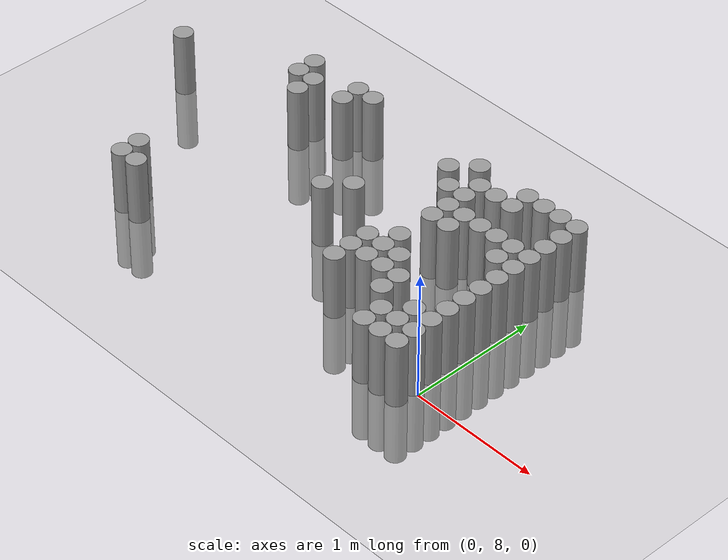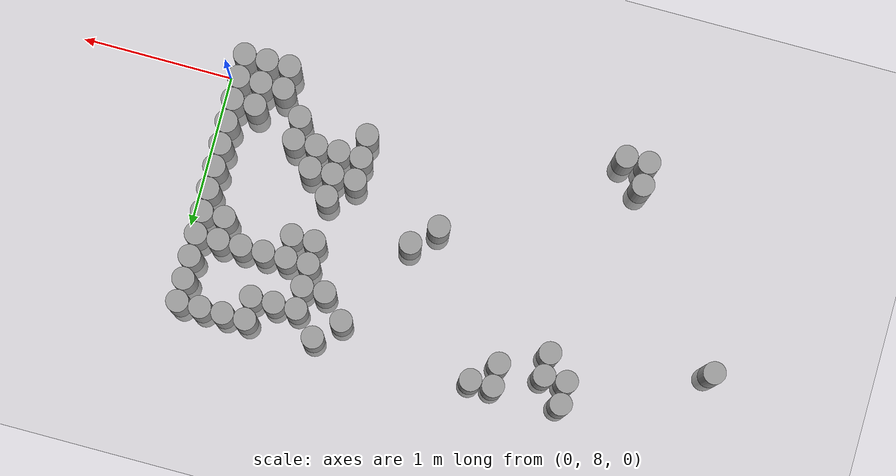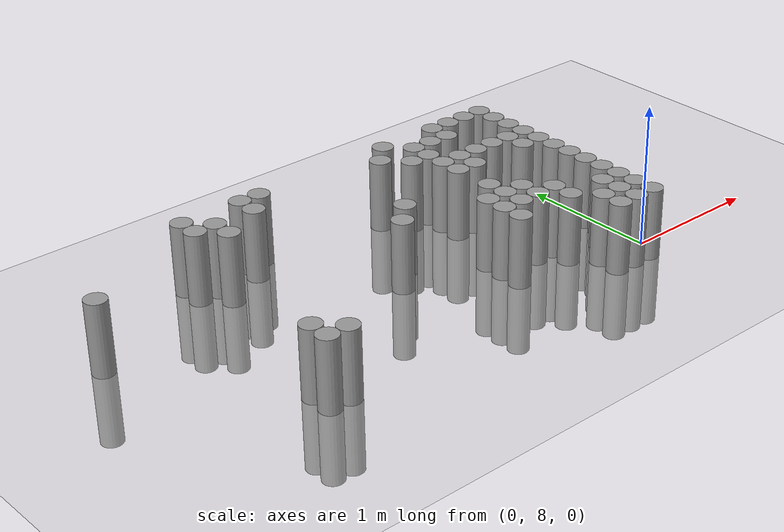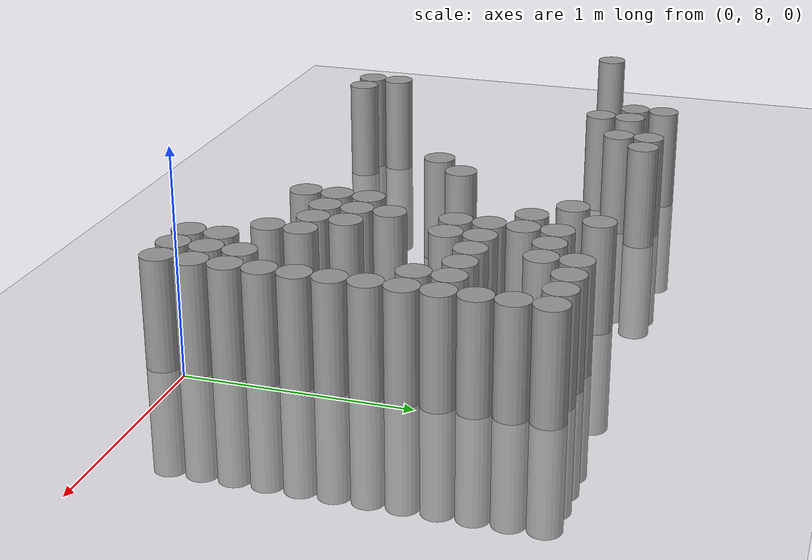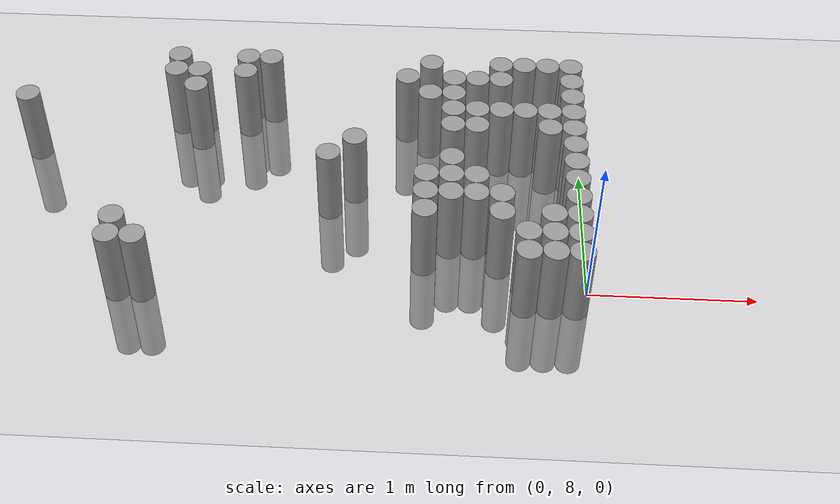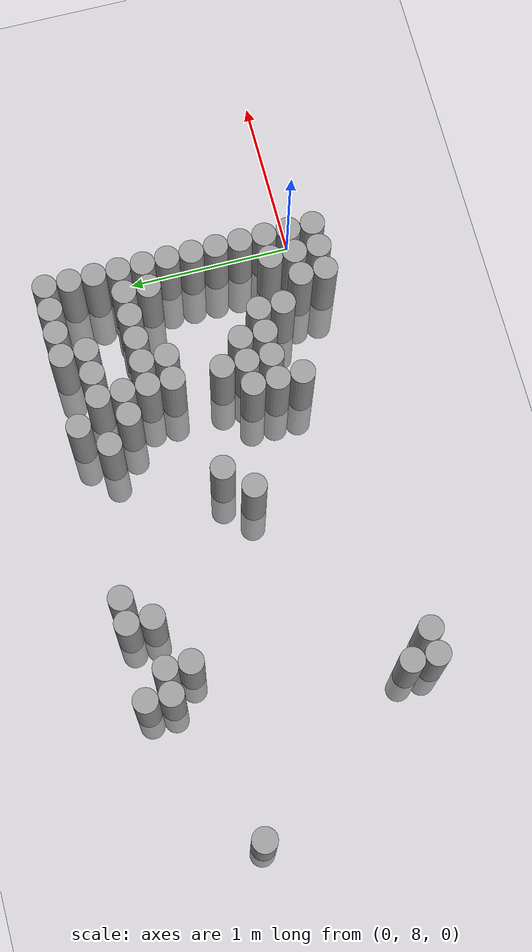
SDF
<sdf version="1.6">
 <world name="default">
  <model name="ground_plane">
   <static>1</static>
   <static>1</static>
   <link name="link">
    <collision name="collision">
     <geometry><plane><normal>0 0 1</normal><size>100 100</size></plane></geometry>
     <surface><friction><ode><mu>100</mu><mu2>50</mu2></ode></friction></surface>
    </collision>
    <visual name="visual">
     <cast_shadows>0</cast_shadows>
     <geometry><plane><normal>0 0 1</normal><size>100 100</size></plane></geometry>
     <material>
      <script><uri>file://media/materials/scripts/gazebo.material</uri><name>Gazebo/Grey</name></script>
     </material>
    </visual>
   </link>
  </model>
  <model name="unit_cylinder_161">
   <static>1</static>
   <pose>-3.525000 9.075000 0.000000 0.000000 0.000000 0.000000</pose>
   <link name="link">
    <inertial>
     <mass>1</mass>
     <inertia><ixx>0.145833</ixx><ixy>0</ixy><ixz>0</ixz><iyy>0.145833</iyy><iyz>0</iyz><izz>0.125</izz></inertia>
    </inertial>
    <collision name="collision">
     <geometry><cylinder><radius>0.075000</radius><length>1</length></cylinder></geometry>
    </collision>
    <visual name="visual">
     <geometry><cylinder><radius>0.075000</radius><length>1</length></cylinder></geometry>
     <material>
      <script><name>Gazebo/Grey</name><uri>file://media/materials/scripts/gazebo.material</uri></script>
     </material>
    </visual>
   </link>
  </model>
  <model name="unit_cylinder_163">
   <static>1</static>
   <pose>-2.775000 7.875000 0.000000 0.000000 0.000000 0.000000</pose>
   <link name="link">
    <inertial>
     <mass>1</mass>
     <inertia><ixx>0.145833</ixx><ixy>0</ixy><ixz>0</ixz><iyy>0.145833</iyy><iyz>0</iyz><izz>0.125</izz></inertia>
    </inertial>
    <collision name="collision">
     <geometry><cylinder><radius>0.075000</radius><length>1</length></cylinder></geometry>
    </collision>
    <visual name="visual">
     <geometry><cylinder><radius>0.075000</radius><length>1</length></cylinder></geometry>
     <material>
      <script><name>Gazebo/Grey</name><uri>file://media/materials/scripts/gazebo.material</uri></script>
     </material>
    </visual>
   </link>
  </model>
  <model name="unit_cylinder_164">
   <static>1</static>
   <pose>-2.775000 8.025000 0.000000 0.000000 0.000000 0.000000</pose>
   <link name="link">
    <inertial>
     <mass>1</mass>
     <inertia><ixx>0.145833</ixx><ixy>0</ixy><ixz>0</ixz><iyy>0.145833</iyy><iyz>0</iyz><izz>0.125</izz></inertia>
    </inertial>
    <collision name="collision">
     <geometry><cylinder><radius>0.075000</radius><length>1</length></cylinder></geometry>
    </collision>
    <visual name="visual">
     <geometry><cylinder><radius>0.075000</radius><length>1</length></cylinder></geometry>
     <material>
      <script><name>Gazebo/Grey</name><uri>file://media/materials/scripts/gazebo.material</uri></script>
     </material>
    </visual>
   </link>
  </model>
  <model name="unit_cylinder_167">
   <static>1</static>
   <pose>-2.625000 7.875000 0.000000 0.000000 0.000000 0.000000</pose>
   <link name="link">
    <inertial>
     <mass>1</mass>
     <inertia><ixx>0.145833</ixx><ixy>0</ixy><ixz>0</ixz><iyy>0.145833</iyy><iyz>0</iyz><izz>0.125</izz></inertia>
    </inertial>
    <collision name="collision">
     <geometry><cylinder><radius>0.075000</radius><length>1</length></cylinder></geometry>
    </collision>
    <visual name="visual">
     <geometry><cylinder><radius>0.075000</radius><length>1</length></cylinder></geometry>
     <material>
      <script><name>Gazebo/Grey</name><uri>file://media/materials/scripts/gazebo.material</uri></script>
     </material>
    </visual>
   </link>
  </model>
  <model name="unit_cylinder_168">
   <static>1</static>
   <pose>-2.625000 9.375000 0.000000 0.000000 0.000000 0.000000</pose>
   <link name="link">
    <inertial>
     <mass>1</mass>
     <inertia><ixx>0.145833</ixx><ixy>0</ixy><ixz>0</ixz><iyy>0.145833</iyy><iyz>0</iyz><izz>0.125</izz></inertia>
    </inertial>
    <collision name="collision">
     <geometry><cylinder><radius>0.075000</radius><length>1</length></cylinder></geometry>
    </collision>
    <visual name="visual">
     <geometry><cylinder><radius>0.075000</radius><length>1</length></cylinder></geometry>
     <material>
      <script><name>Gazebo/Grey</name><uri>file://media/materials/scripts/gazebo.material</uri></script>
     </material>
    </visual>
   </link>
  </model>
  <model name="unit_cylinder_169">
   <static>1</static>
   <pose>-2.625000 9.525000 0.000000 0.000000 0.000000 0.000000</pose>
   <link name="link">
    <inertial>
     <mass>1</mass>
     <inertia><ixx>0.145833</ixx><ixy>0</ixy><ixz>0</ixz><iyy>0.145833</iyy><iyz>0</iyz><izz>0.125</izz></inertia>
    </inertial>
    <collision name="collision">
     <geometry><cylinder><radius>0.075000</radius><length>1</length></cylinder></geometry>
    </collision>
    <visual name="visual">
     <geometry><cylinder><radius>0.075000</radius><length>1</length></cylinder></geometry>
     <material>
      <script><name>Gazebo/Grey</name><uri>file://media/materials/scripts/gazebo.material</uri></script>
     </material>
    </visual>
   </link>
  </model>
  <model name="unit_cylinder_172">
   <static>1</static>
   <pose>-2.475000 9.225000 0.000000 0.000000 0.000000 0.000000</pose>
   <link name="link">
    <inertial>
     <mass>1</mass>
     <inertia><ixx>0.145833</ixx><ixy>0</ixy><ixz>0</ixz><iyy>0.145833</iyy><iyz>0</iyz><izz>0.125</izz></inertia>
    </inertial>
    <collision name="collision">
     <geometry><cylinder><radius>0.075000</radius><length>1</length></cylinder></geometry>
    </collision>
    <visual name="visual">
     <geometry><cylinder><radius>0.075000</radius><length>1</length></cylinder></geometry>
     <material>
      <script><name>Gazebo/Grey</name><uri>file://media/materials/scripts/gazebo.material</uri></script>
     </material>
    </visual>
   </link>
  </model>
  <model name="unit_cylinder_173">
   <static>1</static>
   <pose>-2.475000 9.375000 0.000000 0.000000 0.000000 0.000000</pose>
   <link name="link">
    <inertial>
     <mass>1</mass>
     <inertia><ixx>0.145833</ixx><ixy>0</ixy><ixz>0</ixz><iyy>0.145833</iyy><iyz>0</iyz><izz>0.125</izz></inertia>
    </inertial>
    <collision name="collision">
     <geometry><cylinder><radius>0.075000</radius><length>1</length></cylinder></geometry>
    </collision>
    <visual name="visual">
     <geometry><cylinder><radius>0.075000</radius><length>1</length></cylinder></geometry>
     <material>
      <script><name>Gazebo/Grey</name><uri>file://media/materials/scripts/gazebo.material</uri></script>
     </material>
    </visual>
   </link>
  </model>
  <model name="unit_cylinder_178">
   <static>1</static>
   <pose>-2.175000 9.375000 0.000000 0.000000 0.000000 0.000000</pose>
   <link name="link">
    <inertial>
     <mass>1</mass>
     <inertia><ixx>0.145833</ixx><ixy>0</ixy><ixz>0</ixz><iyy>0.145833</iyy><iyz>0</iyz><izz>0.125</izz></inertia>
    </inertial>
    <collision name="collision">
     <geometry><cylinder><radius>0.075000</radius><length>1</length></cylinder></geometry>
    </collision>
    <visual name="visual">
     <geometry><cylinder><radius>0.075000</radius><length>1</length></cylinder></geometry>
     <material>
      <script><name>Gazebo/Grey</name><uri>file://media/materials/scripts/gazebo.material</uri></script>
     </material>
    </visual>
   </link>
  </model>
  <model name="unit_cylinder_179">
   <static>1</static>
   <pose>-2.175000 9.525000 0.000000 0.000000 0.000000 0.000000</pose>
   <link name="link">
    <inertial>
     <mass>1</mass>
     <inertia><ixx>0.145833</ixx><ixy>0</ixy><ixz>0</ixz><iyy>0.145833</iyy><iyz>0</iyz><izz>0.125</izz></inertia>
    </inertial>
    <collision name="collision">
     <geometry><cylinder><radius>0.075000</radius><length>1</length></cylinder></geometry>
    </collision>
    <visual name="visual">
     <geometry><cylinder><radius>0.075000</radius><length>1</length></cylinder></geometry>
     <material>
      <script><name>Gazebo/Grey</name><uri>file://media/materials/scripts/gazebo.material</uri></script>
     </material>
    </visual>
   </link>
  </model>
  <model name="unit_cylinder_182">
   <static>1</static>
   <pose>-2.025000 9.525000 0.000000 0.000000 0.000000 0.000000</pose>
   <link name="link">
    <inertial>
     <mass>1</mass>
     <inertia><ixx>0.145833</ixx><ixy>0</ixy><ixz>0</ixz><iyy>0.145833</iyy><iyz>0</iyz><izz>0.125</izz></inertia>
    </inertial>
    <collision name="collision">
     <geometry><cylinder><radius>0.075000</radius><length>1</length></cylinder></geometry>
    </collision>
    <visual name="visual">
     <geometry><cylinder><radius>0.075000</radius><length>1</length></cylinder></geometry>
     <material>
      <script><name>Gazebo/Grey</name><uri>file://media/materials/scripts/gazebo.material</uri></script>
     </material>
    </visual>
   </link>
  </model>
  <model name="unit_cylinder_190">
   <static>1</static>
   <pose>-1.575000 8.625000 0.000000 0.000000 0.000000 0.000000</pose>
   <link name="link">
    <inertial>
     <mass>1</mass>
     <inertia><ixx>0.145833</ixx><ixy>0</ixy><ixz>0</ixz><iyy>0.145833</iyy><iyz>0</iyz><izz>0.125</izz></inertia>
    </inertial>
    <collision name="collision">
     <geometry><cylinder><radius>0.075000</radius><length>1</length></cylinder></geometry>
    </collision>
    <visual name="visual">
     <geometry><cylinder><radius>0.075000</radius><length>1</length></cylinder></geometry>
     <material>
      <script><name>Gazebo/Grey</name><uri>file://media/materials/scripts/gazebo.material</uri></script>
     </material>
    </visual>
   </link>
  </model>
  <model name="unit_cylinder_195">
   <static>1</static>
   <pose>-1.425000 8.775000 0.000000 0.000000 0.000000 0.000000</pose>
   <link name="link">
    <inertial>
     <mass>1</mass>
     <inertia><ixx>0.145833</ixx><ixy>0</ixy><ixz>0</ixz><iyy>0.145833</iyy><iyz>0</iyz><izz>0.125</izz></inertia>
    </inertial>
    <collision name="collision">
     <geometry><cylinder><radius>0.075000</radius><length>1</length></cylinder></geometry>
    </collision>
    <visual name="visual">
     <geometry><cylinder><radius>0.075000</radius><length>1</length></cylinder></geometry>
     <material>
      <script><name>Gazebo/Grey</name><uri>file://media/materials/scripts/gazebo.material</uri></script>
     </material>
    </visual>
   </link>
  </model>
  <model name="unit_cylinder_197">
   <static>1</static>
   <pose>-1.125000 9.375000 0.000000 0.000000 0.000000 0.000000</pose>
   <link name="link">
    <inertial>
     <mass>1</mass>
     <inertia><ixx>0.145833</ixx><ixy>0</ixy><ixz>0</ixz><iyy>0.145833</iyy><iyz>0</iyz><izz>0.125</izz></inertia>
    </inertial>
    <collision name="collision">
     <geometry><cylinder><radius>0.075000</radius><length>1</length></cylinder></geometry>
    </collision>
    <visual name="visual">
     <geometry><cylinder><radius>0.075000</radius><length>1</length></cylinder></geometry>
     <material>
      <script><name>Gazebo/Grey</name><uri>file://media/materials/scripts/gazebo.material</uri></script>
     </material>
    </visual>
   </link>
  </model>
  <model name="unit_cylinder_200">
   <static>1</static>
   <pose>-0.975000 8.175000 0.000000 0.000000 0.000000 0.000000</pose>
   <link name="link">
    <inertial>
     <mass>1</mass>
     <inertia><ixx>0.145833</ixx><ixy>0</ixy><ixz>0</ixz><iyy>0.145833</iyy><iyz>0</iyz><izz>0.125</izz></inertia>
    </inertial>
    <collision name="collision">
     <geometry><cylinder><radius>0.075000</radius><length>1</length></cylinder></geometry>
    </collision>
    <visual name="visual">
     <geometry><cylinder><radius>0.075000</radius><length>1</length></cylinder></geometry>
     <material>
      <script><name>Gazebo/Grey</name><uri>file://media/materials/scripts/gazebo.material</uri></script>
     </material>
    </visual>
   </link>
  </model>
  <model name="unit_cylinder_201">
   <static>1</static>
   <pose>-0.975000 8.325000 0.000000 0.000000 0.000000 0.000000</pose>
   <link name="link">
    <inertial>
     <mass>1</mass>
     <inertia><ixx>0.145833</ixx><ixy>0</ixy><ixz>0</ixz><iyy>0.145833</iyy><iyz>0</iyz><izz>0.125</izz></inertia>
    </inertial>
    <collision name="collision">
     <geometry><cylinder><radius>0.075000</radius><length>1</length></cylinder></geometry>
    </collision>
    <visual name="visual">
     <geometry><cylinder><radius>0.075000</radius><length>1</length></cylinder></geometry>
     <material>
      <script><name>Gazebo/Grey</name><uri>file://media/materials/scripts/gazebo.material</uri></script>
     </material>
    </visual>
   </link>
  </model>
  <model name="unit_cylinder_202">
   <static>1</static>
   <pose>-0.975000 8.475000 0.000000 0.000000 0.000000 0.000000</pose>
   <link name="link">
    <inertial>
     <mass>1</mass>
     <inertia><ixx>0.145833</ixx><ixy>0</ixy><ixz>0</ixz><iyy>0.145833</iyy><iyz>0</iyz><izz>0.125</izz></inertia>
    </inertial>
    <collision name="collision">
     <geometry><cylinder><radius>0.075000</radius><length>1</length></cylinder></geometry>
    </collision>
    <visual name="visual">
     <geometry><cylinder><radius>0.075000</radius><length>1</length></cylinder></geometry>
     <material>
      <script><name>Gazebo/Grey</name><uri>file://media/materials/scripts/gazebo.material</uri></script>
     </material>
    </visual>
   </link>
  </model>
  <model name="unit_cylinder_203">
   <static>1</static>
   <pose>-0.975000 9.225000 0.000000 0.000000 0.000000 0.000000</pose>
   <link name="link">
    <inertial>
     <mass>1</mass>
     <inertia><ixx>0.145833</ixx><ixy>0</ixy><ixz>0</ixz><iyy>0.145833</iyy><iyz>0</iyz><izz>0.125</izz></inertia>
    </inertial>
    <collision name="collision">
     <geometry><cylinder><radius>0.075000</radius><length>1</length></cylinder></geometry>
    </collision>
    <visual name="visual">
     <geometry><cylinder><radius>0.075000</radius><length>1</length></cylinder></geometry>
     <material>
      <script><name>Gazebo/Grey</name><uri>file://media/materials/scripts/gazebo.material</uri></script>
     </material>
    </visual>
   </link>
  </model>
  <model name="unit_cylinder_204">
   <static>1</static>
   <pose>-0.975000 9.525000 0.000000 0.000000 0.000000 0.000000</pose>
   <link name="link">
    <inertial>
     <mass>1</mass>
     <inertia><ixx>0.145833</ixx><ixy>0</ixy><ixz>0</ixz><iyy>0.145833</iyy><iyz>0</iyz><izz>0.125</izz></inertia>
    </inertial>
    <collision name="collision">
     <geometry><cylinder><radius>0.075000</radius><length>1</length></cylinder></geometry>
    </collision>
    <visual name="visual">
     <geometry><cylinder><radius>0.075000</radius><length>1</length></cylinder></geometry>
     <material>
      <script><name>Gazebo/Grey</name><uri>file://media/materials/scripts/gazebo.material</uri></script>
     </material>
    </visual>
   </link>
  </model>
  <model name="unit_cylinder_208">
   <static>1</static>
   <pose>-0.825000 8.325000 0.000000 0.000000 0.000000 0.000000</pose>
   <link name="link">
    <inertial>
     <mass>1</mass>
     <inertia><ixx>0.145833</ixx><ixy>0</ixy><ixz>0</ixz><iyy>0.145833</iyy><iyz>0</iyz><izz>0.125</izz></inertia>
    </inertial>
    <collision name="collision">
     <geometry><cylinder><radius>0.075000</radius><length>1</length></cylinder></geometry>
    </collision>
    <visual name="visual">
     <geometry><cylinder><radius>0.075000</radius><length>1</length></cylinder></geometry>
     <material>
      <script><name>Gazebo/Grey</name><uri>file://media/materials/scripts/gazebo.material</uri></script>
     </material>
    </visual>
   </link>
  </model>
  <model name="unit_cylinder_209">
   <static>1</static>
   <pose>-0.825000 8.475000 0.000000 0.000000 0.000000 0.000000</pose>
   <link name="link">
    <inertial>
     <mass>1</mass>
     <inertia><ixx>0.145833</ixx><ixy>0</ixy><ixz>0</ixz><iyy>0.145833</iyy><iyz>0</iyz><izz>0.125</izz></inertia>
    </inertial>
    <collision name="collision">
     <geometry><cylinder><radius>0.075000</radius><length>1</length></cylinder></geometry>
    </collision>
    <visual name="visual">
     <geometry><cylinder><radius>0.075000</radius><length>1</length></cylinder></geometry>
     <material>
      <script><name>Gazebo/Grey</name><uri>file://media/materials/scripts/gazebo.material</uri></script>
     </material>
    </visual>
   </link>
  </model>
  <model name="unit_cylinder_210">
   <static>1</static>
   <pose>-0.825000 8.625000 0.000000 0.000000 0.000000 0.000000</pose>
   <link name="link">
    <inertial>
     <mass>1</mass>
     <inertia><ixx>0.145833</ixx><ixy>0</ixy><ixz>0</ixz><iyy>0.145833</iyy><iyz>0</iyz><izz>0.125</izz></inertia>
    </inertial>
    <collision name="collision">
     <geometry><cylinder><radius>0.075000</radius><length>1</length></cylinder></geometry>
    </collision>
    <visual name="visual">
     <geometry><cylinder><radius>0.075000</radius><length>1</length></cylinder></geometry>
     <material>
      <script><name>Gazebo/Grey</name><uri>file://media/materials/scripts/gazebo.material</uri></script>
     </material>
    </visual>
   </link>
  </model>
  <model name="unit_cylinder_211">
   <static>1</static>
   <pose>-0.825000 8.925000 0.000000 0.000000 0.000000 0.000000</pose>
   <link name="link">
    <inertial>
     <mass>1</mass>
     <inertia><ixx>0.145833</ixx><ixy>0</ixy><ixz>0</ixz><iyy>0.145833</iyy><iyz>0</iyz><izz>0.125</izz></inertia>
    </inertial>
    <collision name="collision">
     <geometry><cylinder><radius>0.075000</radius><length>1</length></cylinder></geometry>
    </collision>
    <visual name="visual">
     <geometry><cylinder><radius>0.075000</radius><length>1</length></cylinder></geometry>
     <material>
      <script><name>Gazebo/Grey</name><uri>file://media/materials/scripts/gazebo.material</uri></script>
     </material>
    </visual>
   </link>
  </model>
  <model name="unit_cylinder_212">
   <static>1</static>
   <pose>-0.825000 9.075000 0.000000 0.000000 0.000000 0.000000</pose>
   <link name="link">
    <inertial>
     <mass>1</mass>
     <inertia><ixx>0.145833</ixx><ixy>0</ixy><ixz>0</ixz><iyy>0.145833</iyy><iyz>0</iyz><izz>0.125</izz></inertia>
    </inertial>
    <collision name="collision">
     <geometry><cylinder><radius>0.075000</radius><length>1</length></cylinder></geometry>
    </collision>
    <visual name="visual">
     <geometry><cylinder><radius>0.075000</radius><length>1</length></cylinder></geometry>
     <material>
      <script><name>Gazebo/Grey</name><uri>file://media/materials/scripts/gazebo.material</uri></script>
     </material>
    </visual>
   </link>
  </model>
  <model name="unit_cylinder_213">
   <static>1</static>
   <pose>-0.825000 9.225000 0.000000 0.000000 0.000000 0.000000</pose>
   <link name="link">
    <inertial>
     <mass>1</mass>
     <inertia><ixx>0.145833</ixx><ixy>0</ixy><ixz>0</ixz><iyy>0.145833</iyy><iyz>0</iyz><izz>0.125</izz></inertia>
    </inertial>
    <collision name="collision">
     <geometry><cylinder><radius>0.075000</radius><length>1</length></cylinder></geometry>
    </collision>
    <visual name="visual">
     <geometry><cylinder><radius>0.075000</radius><length>1</length></cylinder></geometry>
     <material>
      <script><name>Gazebo/Grey</name><uri>file://media/materials/scripts/gazebo.material</uri></script>
     </material>
    </visual>
   </link>
  </model>
  <model name="unit_cylinder_214">
   <static>1</static>
   <pose>-0.825000 9.375000 0.000000 0.000000 0.000000 0.000000</pose>
   <link name="link">
    <inertial>
     <mass>1</mass>
     <inertia><ixx>0.145833</ixx><ixy>0</ixy><ixz>0</ixz><iyy>0.145833</iyy><iyz>0</iyz><izz>0.125</izz></inertia>
    </inertial>
    <collision name="collision">
     <geometry><cylinder><radius>0.075000</radius><length>1</length></cylinder></geometry>
    </collision>
    <visual name="visual">
     <geometry><cylinder><radius>0.075000</radius><length>1</length></cylinder></geometry>
     <material>
      <script><name>Gazebo/Grey</name><uri>file://media/materials/scripts/gazebo.material</uri></script>
     </material>
    </visual>
   </link>
  </model>
  <model name="unit_cylinder_219">
   <static>1</static>
   <pose>-0.675000 8.325000 0.000000 0.000000 0.000000 0.000000</pose>
   <link name="link">
    <inertial>
     <mass>1</mass>
     <inertia><ixx>0.145833</ixx><ixy>0</ixy><ixz>0</ixz><iyy>0.145833</iyy><iyz>0</iyz><izz>0.125</izz></inertia>
    </inertial>
    <collision name="collision">
     <geometry><cylinder><radius>0.075000</radius><length>1</length></cylinder></geometry>
    </collision>
    <visual name="visual">
     <geometry><cylinder><radius>0.075000</radius><length>1</length></cylinder></geometry>
     <material>
      <script><name>Gazebo/Grey</name><uri>file://media/materials/scripts/gazebo.material</uri></script>
     </material>
    </visual>
   </link>
  </model>
  <model name="unit_cylinder_220">
   <static>1</static>
   <pose>-0.675000 8.475000 0.000000 0.000000 0.000000 0.000000</pose>
   <link name="link">
    <inertial>
     <mass>1</mass>
     <inertia><ixx>0.145833</ixx><ixy>0</ixy><ixz>0</ixz><iyy>0.145833</iyy><iyz>0</iyz><izz>0.125</izz></inertia>
    </inertial>
    <collision name="collision">
     <geometry><cylinder><radius>0.075000</radius><length>1</length></cylinder></geometry>
    </collision>
    <visual name="visual">
     <geometry><cylinder><radius>0.075000</radius><length>1</length></cylinder></geometry>
     <material>
      <script><name>Gazebo/Grey</name><uri>file://media/materials/scripts/gazebo.material</uri></script>
     </material>
    </visual>
   </link>
  </model>
  <model name="unit_cylinder_221">
   <static>1</static>
   <pose>-0.675000 8.925000 0.000000 0.000000 0.000000 0.000000</pose>
   <link name="link">
    <inertial>
     <mass>1</mass>
     <inertia><ixx>0.145833</ixx><ixy>0</ixy><ixz>0</ixz><iyy>0.145833</iyy><iyz>0</iyz><izz>0.125</izz></inertia>
    </inertial>
    <collision name="collision">
     <geometry><cylinder><radius>0.075000</radius><length>1</length></cylinder></geometry>
    </collision>
    <visual name="visual">
     <geometry><cylinder><radius>0.075000</radius><length>1</length></cylinder></geometry>
     <material>
      <script><name>Gazebo/Grey</name><uri>file://media/materials/scripts/gazebo.material</uri></script>
     </material>
    </visual>
   </link>
  </model>
  <model name="unit_cylinder_222">
   <static>1</static>
   <pose>-0.675000 9.075000 0.000000 0.000000 0.000000 0.000000</pose>
   <link name="link">
    <inertial>
     <mass>1</mass>
     <inertia><ixx>0.145833</ixx><ixy>0</ixy><ixz>0</ixz><iyy>0.145833</iyy><iyz>0</iyz><izz>0.125</izz></inertia>
    </inertial>
    <collision name="collision">
     <geometry><cylinder><radius>0.075000</radius><length>1</length></cylinder></geometry>
    </collision>
    <visual name="visual">
     <geometry><cylinder><radius>0.075000</radius><length>1</length></cylinder></geometry>
     <material>
      <script><name>Gazebo/Grey</name><uri>file://media/materials/scripts/gazebo.material</uri></script>
     </material>
    </visual>
   </link>
  </model>
  <model name="unit_cylinder_223">
   <static>1</static>
   <pose>-0.675000 9.375000 0.000000 0.000000 0.000000 0.000000</pose>
   <link name="link">
    <inertial>
     <mass>1</mass>
     <inertia><ixx>0.145833</ixx><ixy>0</ixy><ixz>0</ixz><iyy>0.145833</iyy><iyz>0</iyz><izz>0.125</izz></inertia>
    </inertial>
    <collision name="collision">
     <geometry><cylinder><radius>0.075000</radius><length>1</length></cylinder></geometry>
    </collision>
    <visual name="visual">
     <geometry><cylinder><radius>0.075000</radius><length>1</length></cylinder></geometry>
     <material>
      <script><name>Gazebo/Grey</name><uri>file://media/materials/scripts/gazebo.material</uri></script>
     </material>
    </visual>
   </link>
  </model>
  <model name="unit_cylinder_228">
   <static>1</static>
   <pose>-0.525000 8.175000 0.000000 0.000000 0.000000 0.000000</pose>
   <link name="link">
    <inertial>
     <mass>1</mass>
     <inertia><ixx>0.145833</ixx><ixy>0</ixy><ixz>0</ixz><iyy>0.145833</iyy><iyz>0</iyz><izz>0.125</izz></inertia>
    </inertial>
    <collision name="collision">
     <geometry><cylinder><radius>0.075000</radius><length>1</length></cylinder></geometry>
    </collision>
    <visual name="visual">
     <geometry><cylinder><radius>0.075000</radius><length>1</length></cylinder></geometry>
     <material>
      <script><name>Gazebo/Grey</name><uri>file://media/materials/scripts/gazebo.material</uri></script>
     </material>
    </visual>
   </link>
  </model>
  <model name="unit_cylinder_229">
   <static>1</static>
   <pose>-0.525000 8.325000 0.000000 0.000000 0.000000 0.000000</pose>
   <link name="link">
    <inertial>
     <mass>1</mass>
     <inertia><ixx>0.145833</ixx><ixy>0</ixy><ixz>0</ixz><iyy>0.145833</iyy><iyz>0</iyz><izz>0.125</izz></inertia>
    </inertial>
    <collision name="collision">
     <geometry><cylinder><radius>0.075000</radius><length>1</length></cylinder></geometry>
    </collision>
    <visual name="visual">
     <geometry><cylinder><radius>0.075000</radius><length>1</length></cylinder></geometry>
     <material>
      <script><name>Gazebo/Grey</name><uri>file://media/materials/scripts/gazebo.material</uri></script>
     </material>
    </visual>
   </link>
  </model>
  <model name="unit_cylinder_230">
   <static>1</static>
   <pose>-0.525000 9.075000 0.000000 0.000000 0.000000 0.000000</pose>
   <link name="link">
    <inertial>
     <mass>1</mass>
     <inertia><ixx>0.145833</ixx><ixy>0</ixy><ixz>0</ixz><iyy>0.145833</iyy><iyz>0</iyz><izz>0.125</izz></inertia>
    </inertial>
    <collision name="collision">
     <geometry><cylinder><radius>0.075000</radius><length>1</length></cylinder></geometry>
    </collision>
    <visual name="visual">
     <geometry><cylinder><radius>0.075000</radius><length>1</length></cylinder></geometry>
     <material>
      <script><name>Gazebo/Grey</name><uri>file://media/materials/scripts/gazebo.material</uri></script>
     </material>
    </visual>
   </link>
  </model>
  <model name="unit_cylinder_231">
   <static>1</static>
   <pose>-0.525000 9.375000 0.000000 0.000000 0.000000 0.000000</pose>
   <link name="link">
    <inertial>
     <mass>1</mass>
     <inertia><ixx>0.145833</ixx><ixy>0</ixy><ixz>0</ixz><iyy>0.145833</iyy><iyz>0</iyz><izz>0.125</izz></inertia>
    </inertial>
    <collision name="collision">
     <geometry><cylinder><radius>0.075000</radius><length>1</length></cylinder></geometry>
    </collision>
    <visual name="visual">
     <geometry><cylinder><radius>0.075000</radius><length>1</length></cylinder></geometry>
     <material>
      <script><name>Gazebo/Grey</name><uri>file://media/materials/scripts/gazebo.material</uri></script>
     </material>
    </visual>
   </link>
  </model>
  <model name="unit_cylinder_232">
   <static>1</static>
   <pose>-0.525000 9.525000 0.000000 0.000000 0.000000 0.000000</pose>
   <link name="link">
    <inertial>
     <mass>1</mass>
     <inertia><ixx>0.145833</ixx><ixy>0</ixy><ixz>0</ixz><iyy>0.145833</iyy><iyz>0</iyz><izz>0.125</izz></inertia>
    </inertial>
    <collision name="collision">
     <geometry><cylinder><radius>0.075000</radius><length>1</length></cylinder></geometry>
    </collision>
    <visual name="visual">
     <geometry><cylinder><radius>0.075000</radius><length>1</length></cylinder></geometry>
     <material>
      <script><name>Gazebo/Grey</name><uri>file://media/materials/scripts/gazebo.material</uri></script>
     </material>
    </visual>
   </link>
  </model>
  <model name="unit_cylinder_235">
   <static>1</static>
   <pose>-0.375000 7.875000 0.000000 0.000000 0.000000 0.000000</pose>
   <link name="link">
    <inertial>
     <mass>1</mass>
     <inertia><ixx>0.145833</ixx><ixy>0</ixy><ixz>0</ixz><iyy>0.145833</iyy><iyz>0</iyz><izz>0.125</izz></inertia>
    </inertial>
    <collision name="collision">
     <geometry><cylinder><radius>0.075000</radius><length>1</length></cylinder></geometry>
    </collision>
    <visual name="visual">
     <geometry><cylinder><radius>0.075000</radius><length>1</length></cylinder></geometry>
     <material>
      <script><name>Gazebo/Grey</name><uri>file://media/materials/scripts/gazebo.material</uri></script>
     </material>
    </visual>
   </link>
  </model>
  <model name="unit_cylinder_236">
   <static>1</static>
   <pose>-0.375000 8.025000 0.000000 0.000000 0.000000 0.000000</pose>
   <link name="link">
    <inertial>
     <mass>1</mass>
     <inertia><ixx>0.145833</ixx><ixy>0</ixy><ixz>0</ixz><iyy>0.145833</iyy><iyz>0</iyz><izz>0.125</izz></inertia>
    </inertial>
    <collision name="collision">
     <geometry><cylinder><radius>0.075000</radius><length>1</length></cylinder></geometry>
    </collision>
    <visual name="visual">
     <geometry><cylinder><radius>0.075000</radius><length>1</length></cylinder></geometry>
     <material>
      <script><name>Gazebo/Grey</name><uri>file://media/materials/scripts/gazebo.material</uri></script>
     </material>
    </visual>
   </link>
  </model>
  <model name="unit_cylinder_237">
   <static>1</static>
   <pose>-0.375000 9.075000 0.000000 0.000000 0.000000 0.000000</pose>
   <link name="link">
    <inertial>
     <mass>1</mass>
     <inertia><ixx>0.145833</ixx><ixy>0</ixy><ixz>0</ixz><iyy>0.145833</iyy><iyz>0</iyz><izz>0.125</izz></inertia>
    </inertial>
    <collision name="collision">
     <geometry><cylinder><radius>0.075000</radius><length>1</length></cylinder></geometry>
    </collision>
    <visual name="visual">
     <geometry><cylinder><radius>0.075000</radius><length>1</length></cylinder></geometry>
     <material>
      <script><name>Gazebo/Grey</name><uri>file://media/materials/scripts/gazebo.material</uri></script>
     </material>
    </visual>
   </link>
  </model>
  <model name="unit_cylinder_238">
   <static>1</static>
   <pose>-0.375000 9.525000 0.000000 0.000000 0.000000 0.000000</pose>
   <link name="link">
    <inertial>
     <mass>1</mass>
     <inertia><ixx>0.145833</ixx><ixy>0</ixy><ixz>0</ixz><iyy>0.145833</iyy><iyz>0</iyz><izz>0.125</izz></inertia>
    </inertial>
    <collision name="collision">
     <geometry><cylinder><radius>0.075000</radius><length>1</length></cylinder></geometry>
    </collision>
    <visual name="visual">
     <geometry><cylinder><radius>0.075000</radius><length>1</length></cylinder></geometry>
     <material>
      <script><name>Gazebo/Grey</name><uri>file://media/materials/scripts/gazebo.material</uri></script>
     </material>
    </visual>
   </link>
  </model>
  <model name="unit_cylinder_254">
   <static>1</static>
   <pose>-0.225000 7.875000 0.000000 0.000000 0.000000 0.000000</pose>
   <link name="link">
    <inertial>
     <mass>1</mass>
     <inertia><ixx>0.145833</ixx><ixy>0</ixy><ixz>0</ixz><iyy>0.145833</iyy><iyz>0</iyz><izz>0.125</izz></inertia>
    </inertial>
    <collision name="collision">
     <geometry><cylinder><radius>0.075000</radius><length>1</length></cylinder></geometry>
    </collision>
    <visual name="visual">
     <geometry><cylinder><radius>0.075000</radius><length>1</length></cylinder></geometry>
     <material>
      <script><name>Gazebo/Grey</name><uri>file://media/materials/scripts/gazebo.material</uri></script>
     </material>
    </visual>
   </link>
  </model>
  <model name="unit_cylinder_255">
   <static>1</static>
   <pose>-0.225000 8.025000 0.000000 0.000000 0.000000 0.000000</pose>
   <link name="link">
    <inertial>
     <mass>1</mass>
     <inertia><ixx>0.145833</ixx><ixy>0</ixy><ixz>0</ixz><iyy>0.145833</iyy><iyz>0</iyz><izz>0.125</izz></inertia>
    </inertial>
    <collision name="collision">
     <geometry><cylinder><radius>0.075000</radius><length>1</length></cylinder></geometry>
    </collision>
    <visual name="visual">
     <geometry><cylinder><radius>0.075000</radius><length>1</length></cylinder></geometry>
     <material>
      <script><name>Gazebo/Grey</name><uri>file://media/materials/scripts/gazebo.material</uri></script>
     </material>
    </visual>
   </link>
  </model>
  <model name="unit_cylinder_256">
   <static>1</static>
   <pose>-0.225000 8.175000 0.000000 0.000000 0.000000 0.000000</pose>
   <link name="link">
    <inertial>
     <mass>1</mass>
     <inertia><ixx>0.145833</ixx><ixy>0</ixy><ixz>0</ixz><iyy>0.145833</iyy><iyz>0</iyz><izz>0.125</izz></inertia>
    </inertial>
    <collision name="collision">
     <geometry><cylinder><radius>0.075000</radius><length>1</length></cylinder></geometry>
    </collision>
    <visual name="visual">
     <geometry><cylinder><radius>0.075000</radius><length>1</length></cylinder></geometry>
     <material>
      <script><name>Gazebo/Grey</name><uri>file://media/materials/scripts/gazebo.material</uri></script>
     </material>
    </visual>
   </link>
  </model>
  <model name="unit_cylinder_257">
   <static>1</static>
   <pose>-0.225000 8.925000 0.000000 0.000000 0.000000 0.000000</pose>
   <link name="link">
    <inertial>
     <mass>1</mass>
     <inertia><ixx>0.145833</ixx><ixy>0</ixy><ixz>0</ixz><iyy>0.145833</iyy><iyz>0</iyz><izz>0.125</izz></inertia>
    </inertial>
    <collision name="collision">
     <geometry><cylinder><radius>0.075000</radius><length>1</length></cylinder></geometry>
    </collision>
    <visual name="visual">
     <geometry><cylinder><radius>0.075000</radius><length>1</length></cylinder></geometry>
     <material>
      <script><name>Gazebo/Grey</name><uri>file://media/materials/scripts/gazebo.material</uri></script>
     </material>
    </visual>
   </link>
  </model>
  <model name="unit_cylinder_258">
   <static>1</static>
   <pose>-0.225000 9.075000 0.000000 0.000000 0.000000 0.000000</pose>
   <link name="link">
    <inertial>
     <mass>1</mass>
     <inertia><ixx>0.145833</ixx><ixy>0</ixy><ixz>0</ixz><iyy>0.145833</iyy><iyz>0</iyz><izz>0.125</izz></inertia>
    </inertial>
    <collision name="collision">
     <geometry><cylinder><radius>0.075000</radius><length>1</length></cylinder></geometry>
    </collision>
    <visual name="visual">
     <geometry><cylinder><radius>0.075000</radius><length>1</length></cylinder></geometry>
     <material>
      <script><name>Gazebo/Grey</name><uri>file://media/materials/scripts/gazebo.material</uri></script>
     </material>
    </visual>
   </link>
  </model>
  <model name="unit_cylinder_259">
   <static>1</static>
   <pose>-0.225000 9.525000 0.000000 0.000000 0.000000 0.000000</pose>
   <link name="link">
    <inertial>
     <mass>1</mass>
     <inertia><ixx>0.145833</ixx><ixy>0</ixy><ixz>0</ixz><iyy>0.145833</iyy><iyz>0</iyz><izz>0.125</izz></inertia>
    </inertial>
    <collision name="collision">
     <geometry><cylinder><radius>0.075000</radius><length>1</length></cylinder></geometry>
    </collision>
    <visual name="visual">
     <geometry><cylinder><radius>0.075000</radius><length>1</length></cylinder></geometry>
     <material>
      <script><name>Gazebo/Grey</name><uri>file://media/materials/scripts/gazebo.material</uri></script>
     </material>
    </visual>
   </link>
  </model>
  <model name="unit_cylinder_278">
   <static>1</static>
   <pose>-0.075000 7.875000 0.000000 0.000000 0.000000 0.000000</pose>
   <link name="link">
    <inertial>
     <mass>1</mass>
     <inertia><ixx>0.145833</ixx><ixy>0</ixy><ixz>0</ixz><iyy>0.145833</iyy><iyz>0</iyz><izz>0.125</izz></inertia>
    </inertial>
    <collision name="collision">
     <geometry><cylinder><radius>0.075000</radius><length>1</length></cylinder></geometry>
    </collision>
    <visual name="visual">
     <geometry><cylinder><radius>0.075000</radius><length>1</length></cylinder></geometry>
     <material>
      <script><name>Gazebo/Grey</name><uri>file://media/materials/scripts/gazebo.material</uri></script>
     </material>
    </visual>
   </link>
  </model>
  <model name="unit_cylinder_279">
   <static>1</static>
   <pose>-0.075000 8.025000 0.000000 0.000000 0.000000 0.000000</pose>
   <link name="link">
    <inertial>
     <mass>1</mass>
     <inertia><ixx>0.145833</ixx><ixy>0</ixy><ixz>0</ixz><iyy>0.145833</iyy><iyz>0</iyz><izz>0.125</izz></inertia>
    </inertial>
    <collision name="collision">
     <geometry><cylinder><radius>0.075000</radius><length>1</length></cylinder></geometry>
    </collision>
    <visual name="visual">
     <geometry><cylinder><radius>0.075000</radius><length>1</length></cylinder></geometry>
     <material>
      <script><name>Gazebo/Grey</name><uri>file://media/materials/scripts/gazebo.material</uri></script>
     </material>
    </visual>
   </link>
  </model>
  <model name="unit_cylinder_280">
   <static>1</static>
   <pose>-0.075000 8.175000 0.000000 0.000000 0.000000 0.000000</pose>
   <link name="link">
    <inertial>
     <mass>1</mass>
     <inertia><ixx>0.145833</ixx><ixy>0</ixy><ixz>0</ixz><iyy>0.145833</iyy><iyz>0</iyz><izz>0.125</izz></inertia>
    </inertial>
    <collision name="collision">
     <geometry><cylinder><radius>0.075000</radius><length>1</length></cylinder></geometry>
    </collision>
    <visual name="visual">
     <geometry><cylinder><radius>0.075000</radius><length>1</length></cylinder></geometry>
     <material>
      <script><name>Gazebo/Grey</name><uri>file://media/materials/scripts/gazebo.material</uri></script>
     </material>
    </visual>
   </link>
  </model>
  <model name="unit_cylinder_281">
   <static>1</static>
   <pose>-0.075000 8.325000 0.000000 0.000000 0.000000 0.000000</pose>
   <link name="link">
    <inertial>
     <mass>1</mass>
     <inertia><ixx>0.145833</ixx><ixy>0</ixy><ixz>0</ixz><iyy>0.145833</iyy><iyz>0</iyz><izz>0.125</izz></inertia>
    </inertial>
    <collision name="collision">
     <geometry><cylinder><radius>0.075000</radius><length>1</length></cylinder></geometry>
    </collision>
    <visual name="visual">
     <geometry><cylinder><radius>0.075000</radius><length>1</length></cylinder></geometry>
     <material>
      <script><name>Gazebo/Grey</name><uri>file://media/materials/scripts/gazebo.material</uri></script>
     </material>
    </visual>
   </link>
  </model>
  <model name="unit_cylinder_282">
   <static>1</static>
   <pose>-0.075000 8.475000 0.000000 0.000000 0.000000 0.000000</pose>
   <link name="link">
    <inertial>
     <mass>1</mass>
     <inertia><ixx>0.145833</ixx><ixy>0</ixy><ixz>0</ixz><iyy>0.145833</iyy><iyz>0</iyz><izz>0.125</izz></inertia>
    </inertial>
    <collision name="collision">
     <geometry><cylinder><radius>0.075000</radius><length>1</length></cylinder></geometry>
    </collision>
    <visual name="visual">
     <geometry><cylinder><radius>0.075000</radius><length>1</length></cylinder></geometry>
     <material>
      <script><name>Gazebo/Grey</name><uri>file://media/materials/scripts/gazebo.material</uri></script>
     </material>
    </visual>
   </link>
  </model>
  <model name="unit_cylinder_283">
   <static>1</static>
   <pose>-0.075000 8.625000 0.000000 0.000000 0.000000 0.000000</pose>
   <link name="link">
    <inertial>
     <mass>1</mass>
     <inertia><ixx>0.145833</ixx><ixy>0</ixy><ixz>0</ixz><iyy>0.145833</iyy><iyz>0</iyz><izz>0.125</izz></inertia>
    </inertial>
    <collision name="collision">
     <geometry><cylinder><radius>0.075000</radius><length>1</length></cylinder></geometry>
    </collision>
    <visual name="visual">
     <geometry><cylinder><radius>0.075000</radius><length>1</length></cylinder></geometry>
     <material>
      <script><name>Gazebo/Grey</name><uri>file://media/materials/scripts/gazebo.material</uri></script>
     </material>
    </visual>
   </link>
  </model>
  <model name="unit_cylinder_284">
   <static>1</static>
   <pose>-0.075000 8.775000 0.000000 0.000000 0.000000 0.000000</pose>
   <link name="link">
    <inertial>
     <mass>1</mass>
     <inertia><ixx>0.145833</ixx><ixy>0</ixy><ixz>0</ixz><iyy>0.145833</iyy><iyz>0</iyz><izz>0.125</izz></inertia>
    </inertial>
    <collision name="collision">
     <geometry><cylinder><radius>0.075000</radius><length>1</length></cylinder></geometry>
    </collision>
    <visual name="visual">
     <geometry><cylinder><radius>0.075000</radius><length>1</length></cylinder></geometry>
     <material>
      <script><name>Gazebo/Grey</name><uri>file://media/materials/scripts/gazebo.material</uri></script>
     </material>
    </visual>
   </link>
  </model>
  <model name="unit_cylinder_285">
   <static>1</static>
   <pose>-0.075000 8.925000 0.000000 0.000000 0.000000 0.000000</pose>
   <link name="link">
    <inertial>
     <mass>1</mass>
     <inertia><ixx>0.145833</ixx><ixy>0</ixy><ixz>0</ixz><iyy>0.145833</iyy><iyz>0</iyz><izz>0.125</izz></inertia>
    </inertial>
    <collision name="collision">
     <geometry><cylinder><radius>0.075000</radius><length>1</length></cylinder></geometry>
    </collision>
    <visual name="visual">
     <geometry><cylinder><radius>0.075000</radius><length>1</length></cylinder></geometry>
     <material>
      <script><name>Gazebo/Grey</name><uri>file://media/materials/scripts/gazebo.material</uri></script>
     </material>
    </visual>
   </link>
  </model>
  <model name="unit_cylinder_286">
   <static>1</static>
   <pose>-0.075000 9.075000 0.000000 0.000000 0.000000 0.000000</pose>
   <link name="link">
    <inertial>
     <mass>1</mass>
     <inertia><ixx>0.145833</ixx><ixy>0</ixy><ixz>0</ixz><iyy>0.145833</iyy><iyz>0</iyz><izz>0.125</izz></inertia>
    </inertial>
    <collision name="collision">
     <geometry><cylinder><radius>0.075000</radius><length>1</length></cylinder></geometry>
    </collision>
    <visual name="visual">
     <geometry><cylinder><radius>0.075000</radius><length>1</length></cylinder></geometry>
     <material>
      <script><name>Gazebo/Grey</name><uri>file://media/materials/scripts/gazebo.material</uri></script>
     </material>
    </visual>
   </link>
  </model>
  <model name="unit_cylinder_287">
   <static>1</static>
   <pose>-0.075000 9.225000 0.000000 0.000000 0.000000 0.000000</pose>
   <link name="link">
    <inertial>
     <mass>1</mass>
     <inertia><ixx>0.145833</ixx><ixy>0</ixy><ixz>0</ixz><iyy>0.145833</iyy><iyz>0</iyz><izz>0.125</izz></inertia>
    </inertial>
    <collision name="collision">
     <geometry><cylinder><radius>0.075000</radius><length>1</length></cylinder></geometry>
    </collision>
    <visual name="visual">
     <geometry><cylinder><radius>0.075000</radius><length>1</length></cylinder></geometry>
     <material>
      <script><name>Gazebo/Grey</name><uri>file://media/materials/scripts/gazebo.material</uri></script>
     </material>
    </visual>
   </link>
  </model>
  <model name="unit_cylinder_288">
   <static>1</static>
   <pose>-0.075000 9.375000 0.000000 0.000000 0.000000 0.000000</pose>
   <link name="link">
    <inertial>
     <mass>1</mass>
     <inertia><ixx>0.145833</ixx><ixy>0</ixy><ixz>0</ixz><iyy>0.145833</iyy><iyz>0</iyz><izz>0.125</izz></inertia>
    </inertial>
    <collision name="collision">
     <geometry><cylinder><radius>0.075000</radius><length>1</length></cylinder></geometry>
    </collision>
    <visual name="visual">
     <geometry><cylinder><radius>0.075000</radius><length>1</length></cylinder></geometry>
     <material>
      <script><name>Gazebo/Grey</name><uri>file://media/materials/scripts/gazebo.material</uri></script>
     </material>
    </visual>
   </link>
  </model>
  <model name="unit_cylinder_289">
   <static>1</static>
   <pose>-0.075000 9.525000 0.000000 0.000000 0.000000 0.000000</pose>
   <link name="link">
    <inertial>
     <mass>1</mass>
     <inertia><ixx>0.145833</ixx><ixy>0</ixy><ixz>0</ixz><iyy>0.145833</iyy><iyz>0</iyz><izz>0.125</izz></inertia>
    </inertial>
    <collision name="collision">
     <geometry><cylinder><radius>0.075000</radius><length>1</length></cylinder></geometry>
    </collision>
    <visual name="visual">
     <geometry><cylinder><radius>0.075000</radius><length>1</length></cylinder></geometry>
     <material>
      <script><name>Gazebo/Grey</name><uri>file://media/materials/scripts/gazebo.material</uri></script>
     </material>
    </visual>
   </link>
  </model>
 </world>
</sdf>
